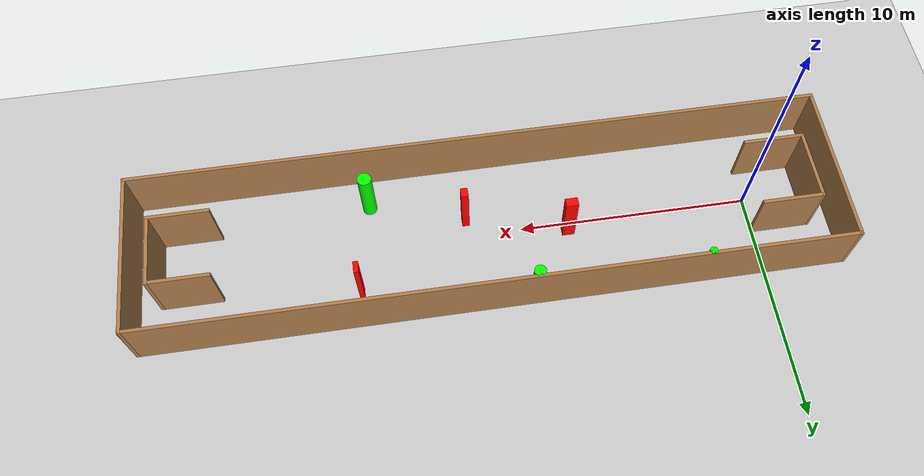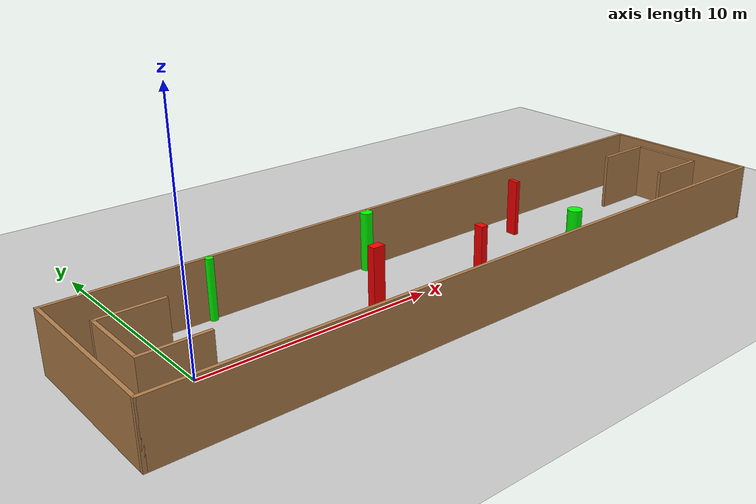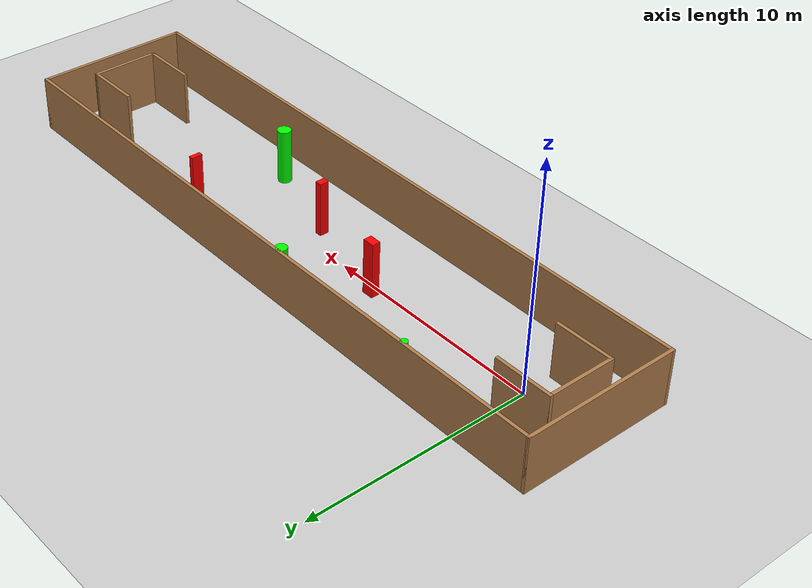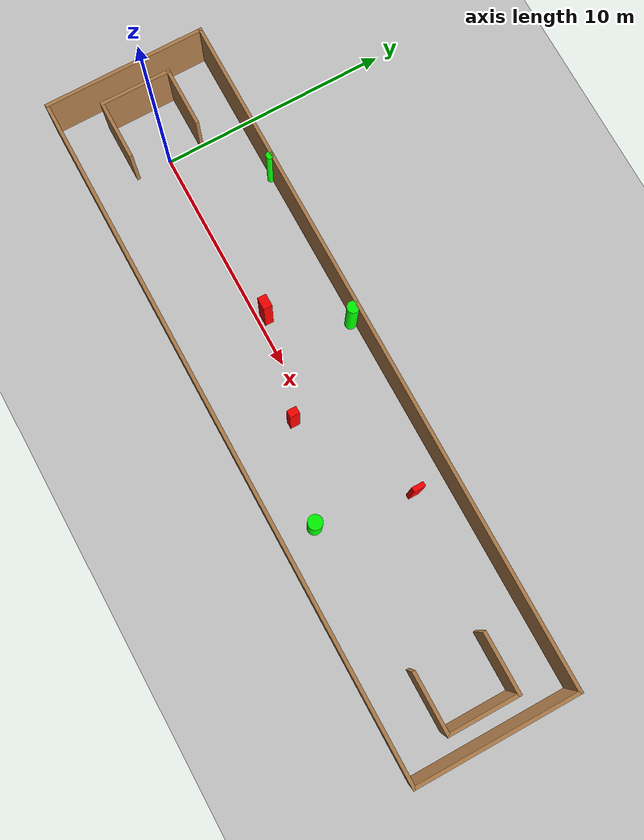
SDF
<sdf version="1.7">
 <world name="default">
  <light name="sun" type="directional">
   <pose>0 0 10 0 -0 0</pose>
   <diffuse>0.8 0.8 0.8 1</diffuse>
   <specular>0.2 0.2 0.2 1</specular>
   <attenuation>
    <range>1000</range>
    <constant>0.9</constant>
    <linear>0.01</linear>
    <quadratic>0.001</quadratic>
   </attenuation>
   <direction>-0.5 0.1 -0.9</direction>
   <spot><inner_angle>0</inner_angle><outer_angle>0</outer_angle><falloff>0</falloff></spot>
  </light>
  <model name="ground_plane">
   <static>1</static>
   <link name="link">
    <collision name="collision">
     <geometry><plane><normal>0 0 1</normal><size>100 100</size></plane></geometry>
     <surface>
      <contact><collide_bitmask>65535</collide_bitmask></contact>
      <friction><ode><mu>100</mu><mu2>50</mu2></ode></friction>
     </surface>
    </collision>
    <visual name="visual">
     <cast_shadows>0</cast_shadows>
     <geometry><plane><normal>0 0 1</normal><size>100 100</size></plane></geometry>
     <material>
      <script><uri>file://media/materials/scripts/gazebo.material</uri><name>Gazebo/Grey</name></script>
     </material>
    </visual>
   </link>
  </model>
  <gravity>0 0 -9.8</gravity>
  <magnetic_field>6e-06 2.3e-05 -4.2e-05</magnetic_field>
  <atmosphere type="adiabatic"/>
  <physics type="ode">
   <max_step_size>0.001</max_step_size>
   <real_time_factor>1</real_time_factor>
   <real_time_update_rate>1000</real_time_update_rate>
  </physics>
  <scene><ambient>0.4 0.4 0.4 1</ambient><background>0.7 0.7 0.7 1</background><shadows>1</shadows></scene>
  <spherical_coordinates>
   <surface_model>EARTH_WGS84</surface_model>
   <latitude_deg>0</latitude_deg>
   <longitude_deg>0</longitude_deg>
   <elevation>0</elevation>
   <heading_deg>0</heading_deg>
  </spherical_coordinates>
  <model name="my_base_walls">
   <link name="Wall_0">
    <collision name="Wall_0_Collision">
     <geometry><box><size>7.15 0.15 2.5</size></box></geometry>
     <pose>0 0 1.25 0 -0 0</pose>
    </collision>
    <visual name="Wall_0_Visual">
     <pose>0 0 1.25 0 -0 0</pose>
     <geometry><box><size>7.15 0.15 2.5</size></box></geometry>
     <material>
      <script><uri>file://media/materials/scripts/gazebo.material</uri><name>Gazebo/Wood</name></script>
      <ambient>1 1 1 1</ambient>
     </material>
     <meta><layer>0</layer></meta>
    </visual>
    <pose>-15 0 0 0 -0 1.5708</pose>
   </link>
   <link name="Wall_10">
    <collision name="Wall_10_Collision">
     <geometry><box><size>2.65 0.15 2.5</size></box></geometry>
     <pose>0 0 1.25 0 -0 0</pose>
    </collision>
    <visual name="Wall_10_Visual">
     <pose>0 0 1.25 0 -0 0</pose>
     <geometry><box><size>2.65 0.15 2.5</size></box></geometry>
     <material>
      <script><uri>file://media/materials/scripts/gazebo.material</uri><name>Gazebo/Wood</name></script>
      <ambient>1 1 1 1</ambient>
     </material>
     <meta><layer>0</layer></meta>
    </visual>
    <pose>-12.75 -1.5 0 0 -0 0</pose>
   </link>
   <link name="Wall_12">
    <collision name="Wall_12_Collision">
     <geometry><box><size>2.65 0.15 2.5</size></box></geometry>
     <pose>0 0 1.25 0 -0 0</pose>
    </collision>
    <visual name="Wall_12_Visual">
     <pose>0 0 1.25 0 -0 0</pose>
     <geometry><box><size>2.65 0.15 2.5</size></box></geometry>
     <material>
      <script><uri>file://media/materials/scripts/gazebo.material</uri><name>Gazebo/Wood</name></script>
      <ambient>1 1 1 1</ambient>
     </material>
     <meta><layer>0</layer></meta>
    </visual>
    <pose>-12.75 1.5 0 0 -0 0</pose>
   </link>
   <link name="Wall_14">
    <collision name="Wall_14_Collision">
     <geometry><box><size>3.15 0.15 2.5</size></box></geometry>
     <pose>0 0 1.25 0 -0 0</pose>
    </collision>
    <visual name="Wall_14_Visual">
     <pose>0 0 1.25 0 -0 0</pose>
     <geometry><box><size>3.15 0.15 2.5</size></box></geometry>
     <material>
      <script><uri>file://media/materials/scripts/gazebo.material</uri><name>Gazebo/Wood</name></script>
      <ambient>1 1 1 1</ambient>
     </material>
     <meta><layer>0</layer></meta>
    </visual>
    <pose>14 0 0 0 -0 -1.5708</pose>
   </link>
   <link name="Wall_15">
    <collision name="Wall_15_Collision">
     <geometry><box><size>2.65 0.15 2.5</size></box></geometry>
     <pose>0 0 1.25 0 -0 0</pose>
    </collision>
    <visual name="Wall_15_Visual">
     <pose>0 0 1.25 0 -0 0</pose>
     <geometry><box><size>2.65 0.15 2.5</size></box></geometry>
     <material>
      <script><uri>file://media/materials/scripts/gazebo.material</uri><name>Gazebo/Wood</name></script>
      <ambient>1 1 1 1</ambient>
     </material>
     <meta><layer>0</layer></meta>
    </visual>
    <pose>12.75 -1.5 0 0 -0 3.14159</pose>
   </link>
   <link name="Wall_17">
    <collision name="Wall_17_Collision">
     <geometry><box><size>2.65 0.15 2.5</size></box></geometry>
     <pose>0 0 1.25 0 -0 0</pose>
    </collision>
    <visual name="Wall_17_Visual">
     <pose>0 0 1.25 0 -0 0</pose>
     <geometry><box><size>2.65 0.15 2.5</size></box></geometry>
     <material>
      <script><uri>file://media/materials/scripts/gazebo.material</uri><name>Gazebo/Wood</name></script>
      <ambient>1 1 1 1</ambient>
     </material>
     <meta><layer>0</layer></meta>
    </visual>
    <pose>12.75 1.5 0 0 -0 3.14159</pose>
   </link>
   <link name="Wall_2">
    <collision name="Wall_2_Collision">
     <geometry><box><size>30.15 0.15 2.5</size></box></geometry>
     <pose>0 0 1.25 0 -0 0</pose>
    </collision>
    <visual name="Wall_2_Visual">
     <pose>0 0 1.25 0 -0 0</pose>
     <geometry><box><size>30.15 0.15 2.5</size></box></geometry>
     <material>
      <script><uri>file://media/materials/scripts/gazebo.material</uri><name>Gazebo/Wood</name></script>
      <ambient>1 1 1 1</ambient>
     </material>
     <meta><layer>0</layer></meta>
    </visual>
    <pose>-0 -3.5 0 0 -0 0</pose>
   </link>
   <link name="Wall_4">
    <collision name="Wall_4_Collision">
     <geometry><box><size>30.15 0.15 2.5</size></box></geometry>
     <pose>0 0 1.25 0 -0 0</pose>
    </collision>
    <visual name="Wall_4_Visual">
     <pose>0 0 1.25 0 -0 0</pose>
     <geometry><box><size>30.15 0.15 2.5</size></box></geometry>
     <material>
      <script><uri>file://media/materials/scripts/gazebo.material</uri><name>Gazebo/Wood</name></script>
      <ambient>1 1 1 1</ambient>
     </material>
     <meta><layer>0</layer></meta>
    </visual>
    <pose>-0 3.5 0 0 -0 0</pose>
   </link>
   <link name="Wall_6">
    <collision name="Wall_6_Collision">
     <geometry><box><size>7.15 0.15 2.5</size></box></geometry>
     <pose>0 0 1.25 0 -0 0</pose>
    </collision>
    <visual name="Wall_6_Visual">
     <pose>0 0 1.25 0 -0 0</pose>
     <geometry><box><size>7.15 0.15 2.5</size></box></geometry>
     <material>
      <script><uri>file://media/materials/scripts/gazebo.material</uri><name>Gazebo/Wood</name></script>
      <ambient>1 1 1 1</ambient>
     </material>
     <meta><layer>0</layer></meta>
    </visual>
    <pose>15 0 0 0 -0 -1.5708</pose>
   </link>
   <link name="Wall_9">
    <collision name="Wall_9_Collision">
     <geometry><box><size>3.15 0.15 2.5</size></box></geometry>
     <pose>0 0 1.25 0 -0 0</pose>
    </collision>
    <visual name="Wall_9_Visual">
     <pose>0 0 1.25 0 -0 0</pose>
     <geometry><box><size>3.15 0.15 2.5</size></box></geometry>
     <material>
      <script><uri>file://media/materials/scripts/gazebo.material</uri><name>Gazebo/Wood</name></script>
      <ambient>1 1 1 1</ambient>
     </material>
     <meta><layer>0</layer></meta>
    </visual>
    <pose>-14 0 0 0 -0 -1.5708</pose>
   </link>
   <static>1</static>
   <pose>11.5 0 0 0 -0 0</pose>
  </model>
  <model name="cylinder1">
   <static>1</static>
   <link name="link">
    <inertial>
     <mass>1</mass>
     <inertia><ixx>0.5</ixx><ixy>0</ixy><ixz>0</ixz><iyy>0.5</iyy><iyz>0</iyz><izz>1</izz></inertia>
    </inertial>
    <collision name="collision">
     <geometry><cylinder><radius>0.1613375189557585</radius><length>2.5</length></cylinder></geometry>
    </collision>
    <visual name="visual">
     <geometry><cylinder><radius>0.1613375189557585</radius><length>2.5</length></cylinder></geometry>
     <material>
      <ambient>0 1 0 1</ambient>
      <diffuse>0 1 0 1</diffuse>
      <specular>0.1 0.1 0.1 1</specular>
      <emissive>0 0 0 0</emissive>
     </material>
    </visual>
   </link>
   <pose>2.7018128305024636 3.406737179980473 1.25 0 0 0</pose>
  </model>
  <model name="cylinder2">
   <static>1</static>
   <link name="link">
    <inertial>
     <mass>1</mass>
     <inertia><ixx>0.5</ixx><ixy>0</ixy><ixz>0</ixz><iyy>0.5</iyy><iyz>0</iyz><izz>1</izz></inertia>
    </inertial>
    <collision name="collision">
     <geometry><cylinder><radius>0.30604827000610235</radius><length>2.5</length></cylinder></geometry>
    </collision>
    <visual name="visual">
     <geometry><cylinder><radius>0.30604827000610235</radius><length>2.5</length></cylinder></geometry>
     <material>
      <ambient>0 1 0 1</ambient>
      <diffuse>0 1 0 1</diffuse>
      <specular>0.1 0.1 0.1 1</specular>
      <emissive>0 0 0 0</emissive>
     </material>
    </visual>
   </link>
   <pose>16.442279128885417 -2.0431858060407952 1.25 0 0 0</pose>
  </model>
  <model name="cylinder3">
   <static>1</static>
   <link name="link">
    <inertial>
     <mass>1</mass>
     <inertia><ixx>0.5</ixx><ixy>0</ixy><ixz>0</ixz><iyy>0.5</iyy><iyz>0</iyz><izz>1</izz></inertia>
    </inertial>
    <collision name="collision">
     <geometry><cylinder><radius>0.2562430669519856</radius><length>2.5</length></cylinder></geometry>
    </collision>
    <visual name="visual">
     <geometry><cylinder><radius>0.2562430669519856</radius><length>2.5</length></cylinder></geometry>
     <material>
      <ambient>0 1 0 1</ambient>
      <diffuse>0 1 0 1</diffuse>
      <specular>0.1 0.1 0.1 1</specular>
      <emissive>0 0 0 0</emissive>
     </material>
    </visual>
   </link>
   <pose>9.81405289022297 3.2794988869887245 1.25 0 0 0</pose>
  </model>
  <model name="box1">
   <static>1</static>
   <link name="link">
    <inertial>
     <mass>1</mass>
     <inertia><ixx>0.083</ixx><ixy>0</ixy><ixz>0</ixz><iyy>0.083</iyy><iyz>0</iyz><izz>0.083</izz></inertia>
    </inertial>
    <collision name="collision">
     <geometry><box><size>0.2095660789638339 0.502716342712604 2.5</size></box></geometry>
    </collision>
    <visual name="visual">
     <geometry><box><size>0.2095660789638339 0.502716342712604 2.5</size></box></geometry>
     <material>
      <ambient>1 0 0 1</ambient>
      <diffuse>1 0 0 1</diffuse>
      <specular>0.1 0.1 0.1 1</specular>
      <emissive>0 0 0 0</emissive>
     </material>
    </visual>
    <sensor name="my_contact" type="contact">
     <contact><collision>box_collision</collision><topic>__default_topic__</topic></contact>
    </sensor>
   </link>
   <pose>17.141074407886833 2.0307141737459604 1.25 0 0 0</pose>
  </model>
  <model name="box2">
   <static>1</static>
   <link name="link">
    <inertial>
     <mass>1</mass>
     <inertia><ixx>0.083</ixx><ixy>0</ixy><ixz>0</ixz><iyy>0.083</iyy><iyz>0</iyz><izz>0.083</izz></inertia>
    </inertial>
    <collision name="collision">
     <geometry><box><size>0.5327415473864117 0.37461011393397736 2.5</size></box></geometry>
    </collision>
    <visual name="visual">
     <geometry><box><size>0.5327415473864117 0.37461011393397736 2.5</size></box></geometry>
     <material>
      <ambient>1 0 0 1</ambient>
      <diffuse>1 0 0 1</diffuse>
      <specular>0.1 0.1 0.1 1</specular>
      <emissive>0 0 0 0</emissive>
     </material>
    </visual>
    <sensor name="my_contact" type="contact">
     <contact><collision>box_collision</collision><topic>__default_topic__</topic></contact>
    </sensor>
   </link>
   <pose>7.975079785931049 0.34903660248123414 1.25 0 0 0</pose>
  </model>
  <model name="box3">
   <static>1</static>
   <link name="link">
    <inertial>
     <mass>1</mass>
     <inertia><ixx>0.083</ixx><ixy>0</ixy><ixz>0</ixz><iyy>0.083</iyy><iyz>0</iyz><izz>0.083</izz></inertia>
    </inertial>
    <collision name="collision">
     <geometry><box><size>0.3120827254063719 0.4168294682108115 2.5</size></box></geometry>
    </collision>
    <visual name="visual">
     <geometry><box><size>0.3120827254063719 0.4168294682108115 2.5</size></box></geometry>
     <material>
      <ambient>1 0 0 1</ambient>
      <diffuse>1 0 0 1</diffuse>
      <specular>0.1 0.1 0.1 1</specular>
      <emissive>0 0 0 0</emissive>
     </material>
    </visual>
    <sensor name="my_contact" type="contact">
     <contact><collision>box_collision</collision><topic>__default_topic__</topic></contact>
    </sensor>
   </link>
   <pose>12.34747073287464 -0.7676472264958099 1.25 0 0 0</pose>
  </model>
 </world>
</sdf>
